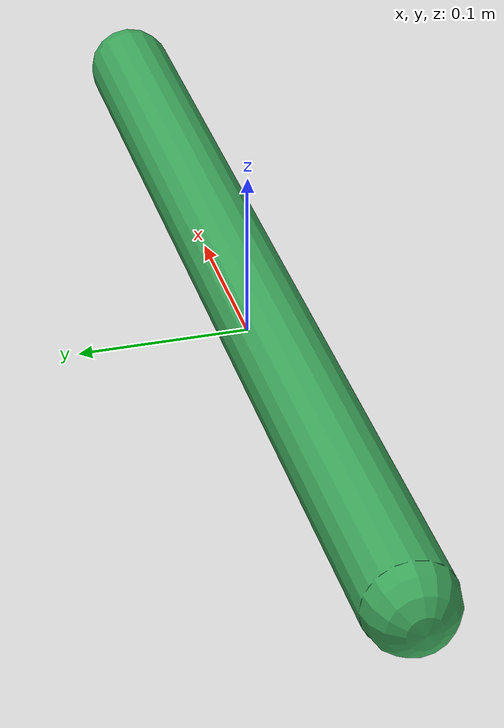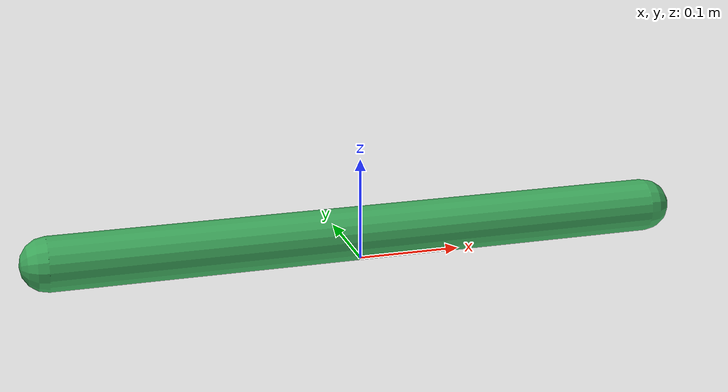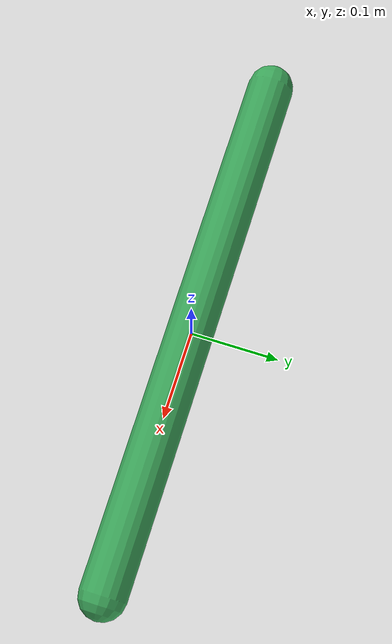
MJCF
<mujoco model="stick_prim_green_26">
  <compiler angle="radian"/>
  <asset>
  </asset>
  <worldbody>
    <body name="stick_prim_green_26">
      <freejoint/>
      <geom name="stick_prim_green_26_g0" type="capsule" size="0.026" fromto="-0.299 0 0.026 0.299 0 0.026" rgba="0.24 0.66 0.36 1" mass="0.05" friction="0.05 0.05 0.005" condim="4"/>
    </body>
  </worldbody>
</mujoco>
